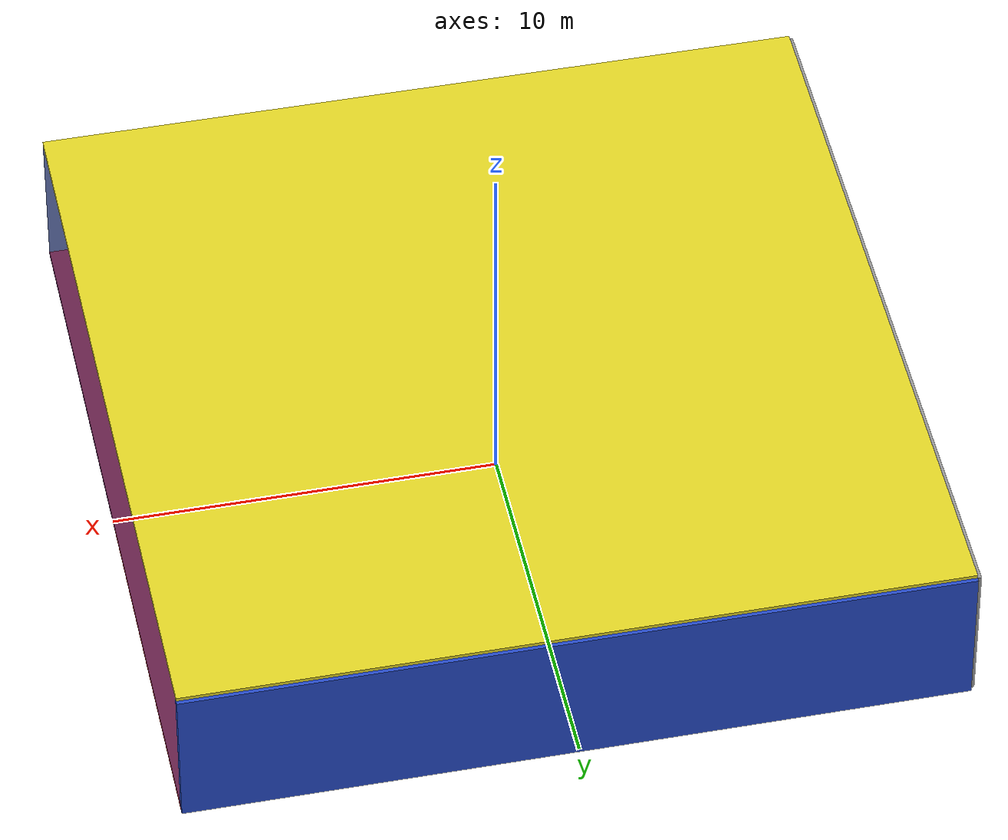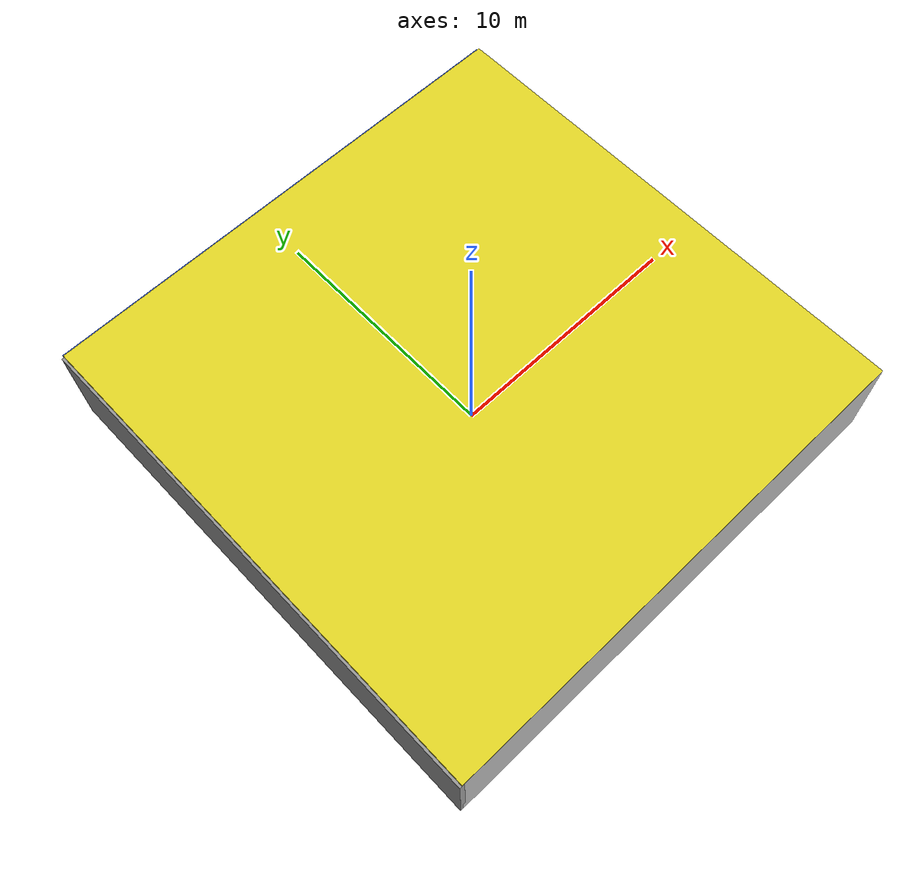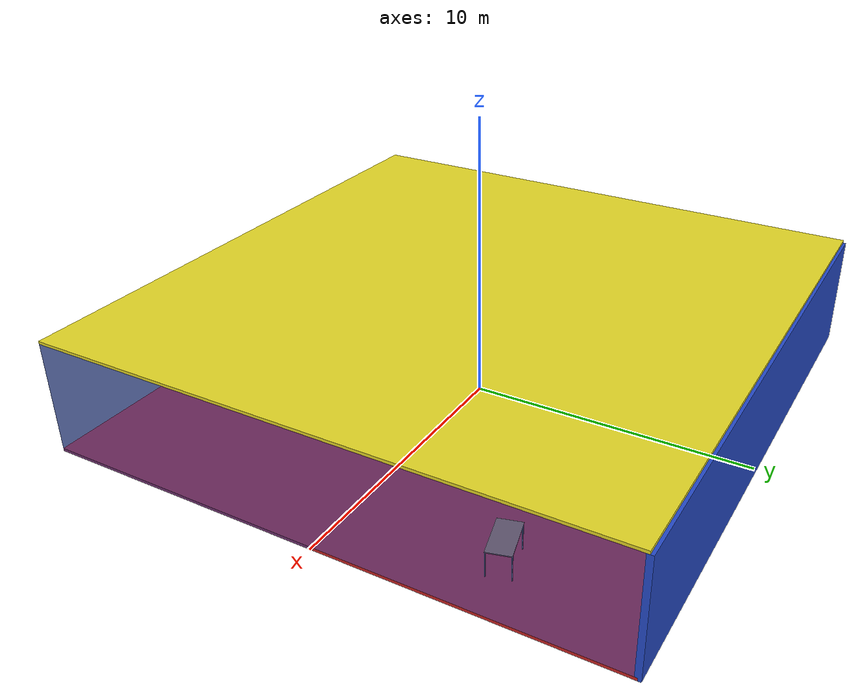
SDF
<sdf version="1.4">
 <world name="default">
  <physics type="ode">
   <max_step_size>0.001</max_step_size>
   <real_time_factor>1</real_time_factor>
   <real_time_update_rate>1000</real_time_update_rate>
   <gravity>0 0 -9.8</gravity>
  </physics>
  <scene><ambient>0.4 0.4 0.4 1</ambient><background>0.7 0.7 0.7 1</background><shadows>1</shadows></scene>
  <model name="Surrounding">
   <static>1</static>
   <link name="Ceiling">
    <collision name="Ceiling_Collision"><geometry><box><size>20 20 0.1</size></box></geometry></collision>
    <visual name="Ceiling_Visual">
     <geometry><box><size>20 20 0.1</size></box></geometry>
     <material>
      <script><uri>file://media/materials/scripts/gazebo.material</uri><name>Gazebo/YellowGlow</name></script>
     </material>
    </visual>
    <pose>0 0 4.05 0 0 0</pose>
   </link>
   <link name="Wall_South">
    <collision name="Wall_South_Collision">
     <geometry><box><size>20 0 4</size></box></geometry>
     <pose>0 0 2 0 -0 0</pose>
    </collision>
    <visual name="Wall_South_Visual">
     <pose>0 0 2 0 -0 0</pose>
     <geometry><box><size>20 0 4</size></box></geometry>
     <material>
      <script><uri>file://media/materials/scripts/gazebo.material</uri><name>Gazebo/Pioneer2Body</name></script>
     </material>
    </visual>
    <velocity_decay><linear>0</linear><angular>0</angular></velocity_decay>
    <pose>0 -10 0 0 -0 0</pose>
   </link>
   <link name="Wall_East">
    <collision name="Wall_21_Collision">
     <geometry><box><size>20 0 4</size></box></geometry>
     <pose>0 0 2 0 -0 0</pose>
    </collision>
    <visual name="Wall_21_Visual">
     <pose>0 0 2 0 -0 0</pose>
     <geometry><box><size>20 0 4</size></box></geometry>
     <material>
      <script><uri>file://media/materials/scripts/gazebo.material</uri><name>Gazebo/BlueTransparent</name></script>
     </material>
    </visual>
    <velocity_decay><linear>0</linear><angular>0</angular></velocity_decay>
    <pose>10 0 0 0 -0 1.5708</pose>
   </link>
   <link name="Wall_North">
    <collision name="Wall_22_Collision">
     <geometry><box><size>20 0.2 4</size></box></geometry>
     <pose>0 0 2 0 -0 0</pose>
    </collision>
    <visual name="Wall_22_Visual">
     <pose>0 0 2 0 -0 0</pose>
     <geometry><box><size>20 0.2 4</size></box></geometry>
     <material>
      <script><uri>file://media/materials/scripts/gazebo.material</uri><name>Gazebo/Blue</name></script>
     </material>
    </visual>
    <velocity_decay><linear>0</linear><angular>0</angular></velocity_decay>
    <pose>0 10 0 0 -0 0</pose>
   </link>
   <link name="Wall_West">
    <collision name="Wall_23_Collision">
     <geometry><box><size>20 0.2 4</size></box></geometry>
     <pose>0 0 2 0 -0 0</pose>
    </collision>
    <visual name="Wall_23_Visual">
     <pose>0 0 2 0 -0 0</pose>
     <geometry><box><size>20 0.2 4</size></box></geometry>
     <material>
      <script><uri>file://media/materials/scripts/gazebo.material</uri><name>Gazebo/GreyGradientSky</name></script>
     </material>
    </visual>
    <velocity_decay><linear>0</linear><angular>0</angular></velocity_decay>
    <pose>-10 0 0 0 0 -1.5708</pose>
   </link>
   <link name="Ground_link">
    <collision name="collision">
     <pose>0 0 .05 0 -0 0</pose>
     <geometry><box><size>20 20 0.1</size></box></geometry>
    </collision>
    <visual name="visual">
     <pose>0 0 .05 0 -0 0</pose>
     <geometry><box><size>20 20 0.1</size></box></geometry>
     <material>
      <script><uri>file://media/materials/scripts/gazebo.material</uri><name>Gazebo/Red</name></script>
     </material>
    </visual>
   </link>
   <static>1</static>
  </model>
  <spherical_coordinates>
   <surface_model>EARTH_WGS84</surface_model>
   <latitude_deg>0</latitude_deg>
   <longitude_deg>0</longitude_deg>
   <elevation>0</elevation>
   <heading_deg>0</heading_deg>
  </spherical_coordinates>
  <light name="lightball_0" type="diffuse">
   <diffuse>0.8 0.8 0.8 1</diffuse>
   <specular>0.2 0.2 0.2 1</specular>
   <attenuation>
    <range>100</range>
    <constant>0.7</constant>
    <linear>0.01</linear>
    <quadratic>0.001</quadratic>
   </attenuation>
   <direction>-0.5 0.1 -0.9</direction>
   <pose>5.10549982811 7.31822761293 1.17765277375 0 0 0</pose>
  </light>
  <light name="lightball_1" type="diffuse">
   <diffuse>0.8 0.8 0.8 1</diffuse>
   <specular>0.2 0.2 0.2 1</specular>
   <attenuation>
    <range>100</range>
    <constant>0.7</constant>
    <linear>0.01</linear>
    <quadratic>0.001</quadratic>
   </attenuation>
   <direction>-0.5 0.1 -0.9</direction>
   <pose>8.23547862563 -6.93424888888 1.11855193306 0 0 0</pose>
  </light>
  <light name="lightball_2" type="diffuse">
   <diffuse>0.8 0.8 0.8 1</diffuse>
   <specular>0.2 0.2 0.2 1</specular>
   <attenuation>
    <range>100</range>
    <constant>0.7</constant>
    <linear>0.01</linear>
    <quadratic>0.001</quadratic>
   </attenuation>
   <direction>-0.5 0.1 -0.9</direction>
   <pose>-1.22362082371 5.89152585285 2.05065314818 0 0 0</pose>
  </light>
  <light name="lightball_3" type="diffuse">
   <diffuse>0.8 0.8 0.8 1</diffuse>
   <specular>0.2 0.2 0.2 1</specular>
   <attenuation>
    <range>100</range>
    <constant>0.7</constant>
    <linear>0.01</linear>
    <quadratic>0.001</quadratic>
   </attenuation>
   <direction>-0.5 0.1 -0.9</direction>
   <pose>0.0189885925557 -3.03669005288 2.64613373751 0 0 0</pose>
  </light>
  <light name="lightball_4" type="diffuse">
   <diffuse>0.8 0.8 0.8 1</diffuse>
   <specular>0.2 0.2 0.2 1</specular>
   <attenuation>
    <range>100</range>
    <constant>0.7</constant>
    <linear>0.01</linear>
    <quadratic>0.001</quadratic>
   </attenuation>
   <direction>-0.5 0.1 -0.9</direction>
   <pose>-3.24006677323 5.72725326774 3.07117843101 0 0 0</pose>
  </light>
  <light name="lightball_5" type="diffuse">
   <diffuse>0.8 0.8 0.8 1</diffuse>
   <specular>0.2 0.2 0.2 1</specular>
   <attenuation>
    <range>100</range>
    <constant>0.7</constant>
    <linear>0.01</linear>
    <quadratic>0.001</quadratic>
   </attenuation>
   <direction>-0.5 0.1 -0.9</direction>
   <pose>3.91458956295 7.02985979473 3.63164988938 0 0 0</pose>
  </light>
  <light name="lightball_6" type="diffuse">
   <diffuse>0.8 0.8 0.8 1</diffuse>
   <specular>0.2 0.2 0.2 1</specular>
   <attenuation>
    <range>100</range>
    <constant>0.7</constant>
    <linear>0.01</linear>
    <quadratic>0.001</quadratic>
   </attenuation>
   <direction>-0.5 0.1 -0.9</direction>
   <pose>-0.00626117395451 4.46655154487 3.71994222602 0 0 0</pose>
  </light>
  <light name="lightball_7" type="diffuse">
   <diffuse>0.8 0.8 0.8 1</diffuse>
   <specular>0.2 0.2 0.2 1</specular>
   <attenuation>
    <range>100</range>
    <constant>0.7</constant>
    <linear>0.01</linear>
    <quadratic>0.001</quadratic>
   </attenuation>
   <direction>-0.5 0.1 -0.9</direction>
   <pose>1.72262973845 -3.22407106871 2.64457270324 0 0 0</pose>
  </light>
  <include><uri>model://cabinet</uri><pose>-6.74405241929 -0.836262347603 0 0 0 0.199312962944</pose></include>
  <include><uri>model://table</uri><pose>-4.48494917783 -1.02254291729 0 0 0 1.77150534262</pose></include>
  <include>
   <uri>model://textured_shapes</uri>
   <pose>-4.75357242026 1.12223354861 0 0 0 0.165385682956</pose>
  </include>
  <include><uri>model://table</uri><pose>-3.85853197514 8.24389910094 0 0 0 1.98545372268</pose></include>
  <include>
   <uri>model://robocup_3Dsim_goal</uri>
   <pose>-2.20306558558 -7.8600171216 0 0 0 2.99864417092</pose>
  </include>
  <include>
   <uri>model://textured_shapes</uri>
   <pose>-1.95438502372 4.6587774681 0 0 0 2.78132817257</pose>
  </include>
  <include>
   <uri>model://textured_shapes</uri>
   <pose>2.2701099658 -4.57557124797 0 0 0 1.79392373344</pose>
  </include>
  <include><uri>model://cabinet</uri><pose>1.97607256126 1.70966875664 0 0 0 0.542894216499</pose></include>
  <include>
   <uri>model://robocup_3Dsim_goal</uri>
   <pose>1.08714460301 7.13159313766 0 0 0 0.282177804624</pose>
  </include>
  <include><uri>model://cabinet</uri><pose>4.01579183035 -2.23685627517 0 0 0 0.475319290263</pose></include>
  <include>
   <uri>model://robocup_3Dsim_goal</uri>
   <pose>3.89365567045 0.719981246628 0 0 0 0.388023091251</pose>
  </include>
  <include><uri>model://cabinet</uri><pose>3.7361382232 4.16697655998 0 0 0 0.449781666803</pose></include>
  <include><uri>model://table</uri><pose>7.8822436655 5.17370414329 0 0 0 0.261428521095</pose></include>
 </world>
</sdf>

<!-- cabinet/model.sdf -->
<sdf version="1.5">
  <model name="cabinet">
    <static>true</static>
    <link name="cabinet_bottom_plate">
      <inertial>
        <pose>0 0 -1 0 0 0</pose>
        <inertia>
          <ixx>2.050000</ixx>
          <ixy>0</ixy>
          <ixz>0</ixz>
          <iyy>2.050000</iyy>
          <iyz>0</iyz>
          <izz>2.050000</izz>
        </inertia>
        <mass>25.000000</mass>
      </inertial>
      <collision name="cabinet_bottom_plate_geom">
        <pose>0 0 0.010000 0 0 0</pose>
        <geometry>
          <box>
            <size>0.450000 0.450000 0.020000</size>
          </box>
        </geometry>
      </collision>
      <visual name="cabinet_bottom_plate_geom_visual">
        <pose>0 0 0.010000 0 0 0</pose>
        <geometry>
          <box>
            <size>0.450000 0.450000 0.020000</size>
          </box>
        </geometry>
        <material>
          <script>
            <uri>model://media/materials/scripts/gazebo.material</uri>
            <name>Gazebo/Wood</name>
          </script>
        </material>
      </visual>
      <collision name="cabinet_bottom_plate_geom_cabinet_back_plate">
        <pose>0.235000 0 0.510000 0 0 0</pose>
        <geometry>
          <box>
            <size>0.020000 0.450000 1.020000</size>
          </box>
        </geometry>
      </collision>
      <visual name="cabinet_bottom_plate_geom_cabinet_back_plate_visual">
        <pose>0.235000 0 0.510000 0 0 0</pose>
        <geometry>
          <box>
            <size>0.020000 0.450000 1.020000</size>
          </box>
        </geometry>
        <material>
          <script>
            <uri>model://media/materials/scripts/gazebo.material</uri>
            <name>Gazebo/Wood</name>
          </script>
        </material>
      </visual>
      <collision name="cabinet_bottom_plate_geom_cabinet_left_plate">
        <pose>0 0.235000 0.510000 0 0 0</pose>
        <geometry>
          <box>
            <size>0.450000 0.020000 1.020000</size>
          </box>
        </geometry>
      </collision>
      <visual name="cabinet_bottom_plate_geom_cabinet_left_plate_visual">
        <pose>0 0.235000 0.510000 0 0 0</pose>
        <geometry>
          <box>
            <size>0.450000 0.020000 1.020000</size>
          </box>
        </geometry>
        <material>
          <script>
            <uri>model://media/materials/scripts/gazebo.material</uri>
            <name>Gazebo/Wood</name>
          </script>
        </material>
      </visual>
      <collision name="cabinet_bottom_plate_geom_cabinet_middle_plate">
        <pose>0 0 0.510000 0 0 0</pose>
        <geometry>
          <box>
            <size>0.450000 0.450000 0.020000</size>
          </box>
        </geometry>
      </collision>
      <visual name="cabinet_bottom_plate_geom_cabinet_middle_plate_visual">
        <pose>0 0 0.510000 0 0 0</pose>
        <geometry>
          <box>
            <size>0.450000 0.450000 0.020000</size>
          </box>
        </geometry>
        <material>
          <script>
            <uri>model://media/materials/scripts/gazebo.material</uri>
            <name>Gazebo/Wood</name>
          </script>
        </material>
      </visual>
      <collision name="cabinet_bottom_plate_geom_cabinet_right_plate">
        <pose>0 -0.235000 0.510000 0 0 0</pose>
        <geometry>
          <box>
            <size>0.450000 0.020000 1.020000</size>
          </box>
        </geometry>
      </collision>
      <visual name="cabinet_bottom_plate_geom_cabinet_right_plate_visual">
        <pose>0 -0.235000 0.510000 0 0 0</pose>
        <geometry>
          <box>
            <size>0.450000 0.020000 1.020000</size>
          </box>
        </geometry>
        <material>
          <script>
            <uri>model://media/materials/scripts/gazebo.material</uri>
            <name>Gazebo/Wood</name>
          </script>
        </material>
      </visual>
      <collision name="cabinet_bottom_plate_geom_cabinet_top_plate">
        <pose>0 0 1.010000 0 0 0</pose>
        <geometry>
          <box>
            <size>0.450000 0.450000 0.020000</size>
          </box>
        </geometry>
      </collision>
      <visual name="cabinet_bottom_plate_geom_cabinet_top_plate_visual">
        <pose>0 0 1.010000 0 0 0</pose>
        <geometry>
          <box>
            <size>0.450000 0.450000 0.020000</size>
          </box>
        </geometry>
        <material>
          <script>
            <uri>model://media/materials/scripts/gazebo.material</uri>
            <name>Gazebo/Wood</name>
          </script>
        </material>
      </visual>
    </link>
  </model>
</sdf>

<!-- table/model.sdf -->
<sdf version="1.5">
  <model name="table">
    <static>true</static>
    <link name="link">
      <collision name="surface">
        <pose>0 0 1.0 0 0 0</pose>
        <geometry>
          <box>
            <size>1.5 0.8 0.03</size>
          </box>
        </geometry>
        <surface>
          <friction>
            <ode>
              <mu>0.6</mu>
              <mu2>0.6</mu2>
            </ode>
          </friction>
        </surface>
      </collision>
      <visual name="visual1">
        <pose>0 0 1.0 0 0 0</pose>
        <geometry>
          <box>
            <size>1.5 0.8 0.03</size>
          </box>
        </geometry>
        <material>
          <script>
            <uri>model://media/materials/scripts/gazebo.material</uri>
            <name>Gazebo/Wood</name>
          </script>
        </material>
      </visual>
      <collision name="front_left_leg">
        <pose>0.68 0.38 0.5 0 0 0</pose>
        <geometry>
          <cylinder>
            <radius>0.02</radius>
            <length>1.0</length>
          </cylinder>
        </geometry>
      </collision>
      <visual name="front_left_leg">
        <pose>0.68 0.38 0.5 0 0 0</pose>
        <geometry>
          <cylinder>
            <radius>0.02</radius>
            <length>1.0</length>
          </cylinder>
        </geometry>
        <material>
          <script>
            <uri>model://media/materials/scripts/gazebo.material</uri>
            <name>Gazebo/Grey</name>
          </script>
        </material>
      </visual>
      <collision name="front_right_leg">
        <pose>0.68 -0.38 0.5 0 0 0</pose>
        <geometry>
          <cylinder>
            <radius>0.02</radius>
            <length>1.0</length>
          </cylinder>
        </geometry>
      </collision>
      <visual name="front_right_leg">
        <pose>0.68 -0.38 0.5 0 0 0</pose>
        <geometry>
          <cylinder>
            <radius>0.02</radius>
            <length>1.0</length>
          </cylinder>
        </geometry>
        <material>
          <script>
            <uri>model://media/materials/scripts/gazebo.material</uri>
            <name>Gazebo/Grey</name>
          </script>
        </material>
      </visual>
      <collision name="back_right_leg">
        <pose>-0.68 -0.38 0.5 0 0 0</pose>
        <geometry>
          <cylinder>
            <radius>0.02</radius>
            <length>1.0</length>
          </cylinder>
        </geometry>
      </collision>
      <visual name="back_right_leg">
        <pose>-0.68 -0.38 0.5 0 0 0</pose>
        <geometry>
          <cylinder>
            <radius>0.02</radius>
            <length>1.0</length>
          </cylinder>
        </geometry>
        <material>
          <script>
            <uri>model://media/materials/scripts/gazebo.material</uri>
            <name>Gazebo/Grey</name>
          </script>
        </material>
      </visual>
      <collision name="back_left_leg">
        <pose>-0.68 0.38 0.5 0 0 0</pose>
        <geometry>
          <cylinder>
            <radius>0.02</radius>
            <length>1.0</length>
          </cylinder>
        </geometry>
      </collision>
      <visual name="back_left_leg">
        <pose>-0.68 0.38 0.5 0 0 0</pose>
        <geometry>
          <cylinder>
            <radius>0.02</radius>
            <length>1.0</length>
          </cylinder>
        </geometry>
        <material>
          <script>
            <uri>model://media/materials/scripts/gazebo.material</uri>
            <name>Gazebo/Grey</name>
          </script>
        </material>
      </visual>
    </link>
  </model>
</sdf>

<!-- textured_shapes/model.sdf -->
<sdf version="1.6">
  <model name="textured_shapes">
    <pose>0 0 0.5 0 0 0</pose>
    <link name="box">
      <pose>0 -1.5 0 0 0 0</pose>
      <collision name="collision">
        <geometry>
          <box>
            <size>1 1 1</size>
          </box>
        </geometry>
      </collision>
      <visual name="visual">
        <geometry>
          <box>
            <size>1 1 1</size>
          </box>
        </geometry>
        <material>
          <script>
            <uri>model://../model_source/models/textured_shapes/materials/scripts</uri>
            <uri>model://../model_source/models/textured_shapes/materials/textures</uri>
            <name>TexturedShape/Squares</name>
          </script>
        </material>
      </visual>
    </link>
    <link name="sphere">
      <collision name="collision">
        <geometry>
          <sphere>
            <radius>0.5</radius>
          </sphere>
        </geometry>
      </collision>
      <visual name="visual">
        <geometry>
          <sphere>
            <radius>0.5</radius>
          </sphere>
        </geometry>
        <material>
          <script>
            <uri>model://../model_source/models/textured_shapes/materials/scripts</uri>
            <uri>model://../model_source/models/textured_shapes/materials/textures</uri>
            <name>TexturedShape/Squares</name>
          </script>
        </material>
      </visual>
    </link>
    <link name="cylinder">
      <pose>0 1.5 0 0 0 0</pose>
      <collision name="collision">
        <geometry>
          <cylinder>
            <radius>0.5</radius>
            <length>1</length>
          </cylinder>
        </geometry>
      </collision>
      <visual name="visual">
        <geometry>
          <cylinder>
            <radius>0.5</radius>
            <length>1</length>
          </cylinder>
        </geometry>
        <material>
          <script>
            <uri>model://../model_source/models/textured_shapes/materials/scripts</uri>
            <uri>model://../model_source/models/textured_shapes/materials/textures</uri>
            <name>TexturedShape/Squares</name>
          </script>
        </material>
      </visual>
    </link>
  </model>
</sdf>

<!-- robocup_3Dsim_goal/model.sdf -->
<sdf version="1.5">
  <model name="robocup_3d_goal">
    <static>true</static>
    <link name="left_post">
      <pose>0 1.05 0.45 0 0 0</pose>
      <collision name="collision">
        <geometry>
          <cylinder>
            <radius>0.05</radius>
            <length>0.9</length>
          </cylinder>
        </geometry>
      </collision>
      <visual name="visual">
        <geometry>
          <cylinder>
            <radius>0.05</radius>
            <length>0.9</length>
          </cylinder>
        </geometry>
        <material>
          <script>
            <uri>file://media/materials/scripts/gazebo.material</uri>
            <name>Gazebo/ZincYellow</name>
          </script>
        </material>
      </visual>
    </link>
    <link name="left_support_horiz_lower">
      <pose>0.30 1.05 0.01 0 0 0</pose>
      <collision name="collision">
        <geometry>
          <box>
            <size>0.50 0.02 0.02</size>
          </box>
        </geometry>
      </collision>
      <visual name="visual">
        <geometry>
          <box>
            <size>0.50 0.02 0.02</size>
          </box>
        </geometry>
        <material>
          <script>
            <uri>file://media/materials/scripts/gazebo.material</uri>
            <name>Gazebo/White</name>
          </script>
        </material>
      </visual>
    </link>
    <link name="left_support_horiz_upper">
      <pose>0.30 1.05 0.79 0 0 0</pose>
      <collision name="collision">
        <geometry>
          <box>
            <size>0.50 0.02 0.02</size>
          </box>
        </geometry>
      </collision>
      <visual name="visual">
        <geometry>
          <box>
            <size>0.50 0.02 0.02</size>
          </box>
        </geometry>
        <material>
          <script>
            <uri>file://media/materials/scripts/gazebo.material</uri>
            <name>Gazebo/White</name>
          </script>
        </material>
      </visual>
    </link>
    <link name="left_support_vertical">
      <pose>0.56 1.05 0.4 0 1.5708 0</pose>
      <collision name="collision">
        <geometry>
          <box>
            <size>0.80 0.02 0.02</size>
          </box>
        </geometry>
      </collision>
      <visual name="visual">
        <geometry>
          <box>
            <size>0.80 0.02 0.02</size>
          </box>
        </geometry>
        <material>
          <script>
            <uri>file://media/materials/scripts/gazebo.material</uri>
            <name>Gazebo/White</name>
          </script>
        </material>
      </visual>
    </link>
    <link name="right_support_horiz_lower">
      <pose>0.30 -1.05 0.01 0 0 0</pose>
      <collision name="collision">
        <geometry>
          <box>
            <size>0.50 0.02 0.02</size>
          </box>
        </geometry>
      </collision>
      <visual name="visual">
        <geometry>
          <box>
            <size>0.50 0.02 0.02</size>
          </box>
        </geometry>
        <material>
          <script>
            <uri>file://media/materials/scripts/gazebo.material</uri>
            <name>Gazebo/White</name>
          </script>
        </material>
      </visual>
    </link>
    <link name="right_support_horiz_upper">
      <pose>0.30 -1.05 0.79 0 0 0</pose>
      <collision name="collision">
        <geometry>
          <box>
            <size>0.50 0.02 0.02</size>
          </box>
        </geometry>
      </collision>
      <visual name="visual">
        <geometry>
          <box>
            <size>0.50 0.02 0.02</size>
          </box>
        </geometry>
        <material>
          <script>
            <uri>file://media/materials/scripts/gazebo.material</uri>
            <name>Gazebo/White</name>
          </script>
        </material>
      </visual>
    </link>
    <link name="right_support_vertical">
      <pose>0.56 -1.05 0.4 0 1.5708 0</pose>
      <collision name="collision">
        <geometry>
          <box>
            <size>0.80 0.02 0.02</size>
          </box>
        </geometry>
      </collision>
      <visual name="visual">
        <geometry>
          <box>
            <size>0.80 0.02 0.02</size>
          </box>
        </geometry>
        <material>
          <script>
            <uri>file://media/materials/scripts/gazebo.material</uri>
            <name>Gazebo/White</name>
          </script>
        </material>
      </visual>
    </link>
    <link name="center_support_horiz_lower">
      <pose>0.56 0 0.01 0 1.5708 0</pose>
      <collision name="collision">
        <geometry>
          <box>
            <size>0.02 2.08 0.02</size>
          </box>
        </geometry>
      </collision>
      <visual name="visual">
        <geometry>
          <box>
            <size>0.02 2.08 0.02</size>
          </box>
        </geometry>
        <material>
          <script>
            <uri>file://media/materials/scripts/gazebo.material</uri>
            <name>Gazebo/White</name>
          </script>
        </material>
      </visual>
    </link>
    <link name="center_support_horiz_upper">
      <pose>0.56 0 0.79 0 1.5708 0</pose>
      <collision name="collision">
        <geometry>
          <box>
            <size>0.02 2.08 0.02</size>
          </box>
        </geometry>
      </collision>
      <visual name="visual">
        <geometry>
          <box>
            <size>0.02 2.08 0.02</size>
          </box>
        </geometry>
        <material>
          <script>
            <uri>file://media/materials/scripts/gazebo.material</uri>
            <name>Gazebo/White</name>
          </script>
        </material>
      </visual>
    </link>
    <link name="right_post">
      <pose>0 -1.05 0.45 0 0 0</pose>
      <collision name="collision">
        <geometry>
          <cylinder>
            <radius>0.05</radius>
            <length>0.9</length>
          </cylinder>
        </geometry>
      </collision>
      <visual name="visual">
        <geometry>
          <cylinder>
            <radius>0.05</radius>
            <length>0.9</length>
          </cylinder>
        </geometry>
        <material>
          <script>
            <uri>file://media/materials/scripts/gazebo.material</uri>
            <name>Gazebo/ZincYellow</name>
          </script>
        </material>
      </visual>
    </link>
    <link name="crossbar">
      <pose>0 0 0.85 1.57 1.57 0</pose>
      <collision name="collision">
        <geometry>
          <cylinder>
            <radius>0.05</radius>
            <length>2.0</length>
          </cylinder>
        </geometry>
      </collision>
      <visual name="visual">
        <geometry>
          <cylinder>
            <radius>0.05</radius>
            <length>2.0</length>
          </cylinder>
        </geometry>
        <material>
          <script>
            <uri>file://media/materials/scripts/gazebo.material</uri>
            <name>Gazebo/ZincYellow</name>
          </script>
        </material>
      </visual>
    </link>
    <link name="center_net">
      <pose>0.56 0 0.40 0 0 0</pose>
      <collision name="collision">
        <geometry>
          <box>
            <size>0.01 2.1 0.80</size>
          </box>
        </geometry>
      </collision>
      <visual name="visual">
        <geometry>
          <box>
            <size>0.01 2.1 0.80</size>
          </box>
        </geometry>
        <material>
          <script>
            <uri>model://../model_source/models/robocup09_spl_field/materials/scripts/</uri>
            <uri>model://../model_source/models/robocup09_spl_field/materials/textures/</uri>
            <name>RoboCup/Net</name>
          </script>
        </material>
      </visual>
    </link>
    <link name="left_net">
      <pose>0.30 1.05 0.40 0 0 0</pose>
      <collision name="collision">
        <geometry>
          <box>
            <size>0.50 0.01 0.76</size>
          </box>
        </geometry>
      </collision>
      <visual name="visual">
        <geometry>
          <box>
            <size>0.50 0.01 0.76</size>
          </box>
        </geometry>
        <material>
          <script>
            <uri>model://../model_source/models/robocup09_spl_field/materials/scripts/</uri>
            <uri>model://../model_source/models/robocup09_spl_field/materials/textures/</uri>
            <name>RoboCup/Net</name>
          </script>
        </material>
      </visual>
    </link>
    <link name="right_net">
      <pose>0.30 -1.05 0.40 0 0 0</pose>
      <collision name="collision">
        <geometry>
          <box>
            <size>0.50 0.01 0.76</size>
          </box>
        </geometry>
      </collision>
      <visual name="visual">
        <geometry>
          <box>
            <size>0.50 0.01 0.76</size>
          </box>
        </geometry>
        <material>
          <script>
            <uri>model://../model_source/models/robocup09_spl_field/materials/scripts/</uri>
            <uri>model://../model_source/models/robocup09_spl_field/materials/textures/</uri>
            <name>RoboCup/Net</name>
          </script>
        </material>
      </visual>
    </link>
  </model>
</sdf>
